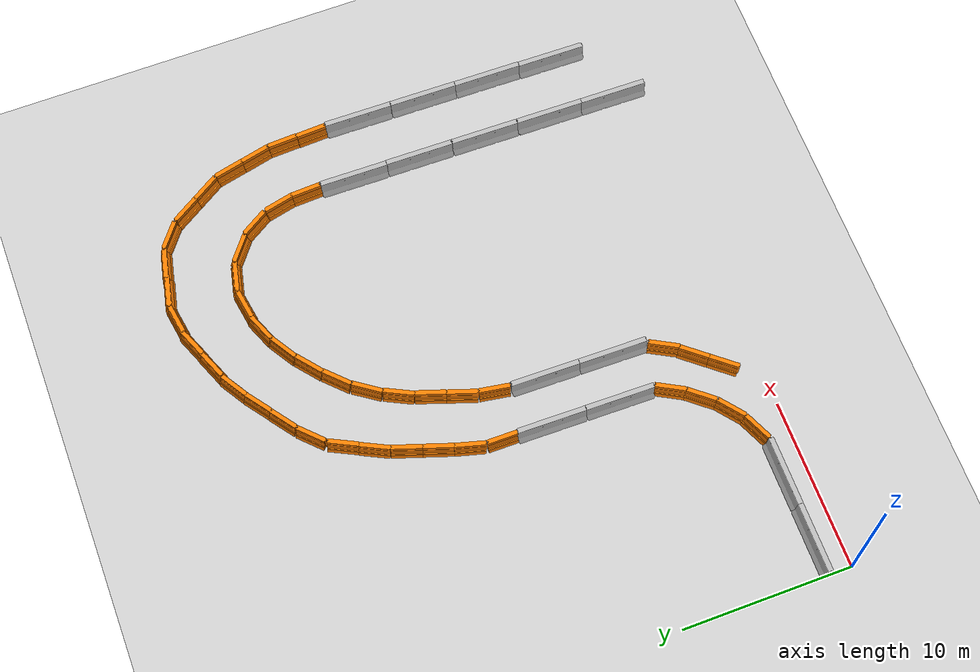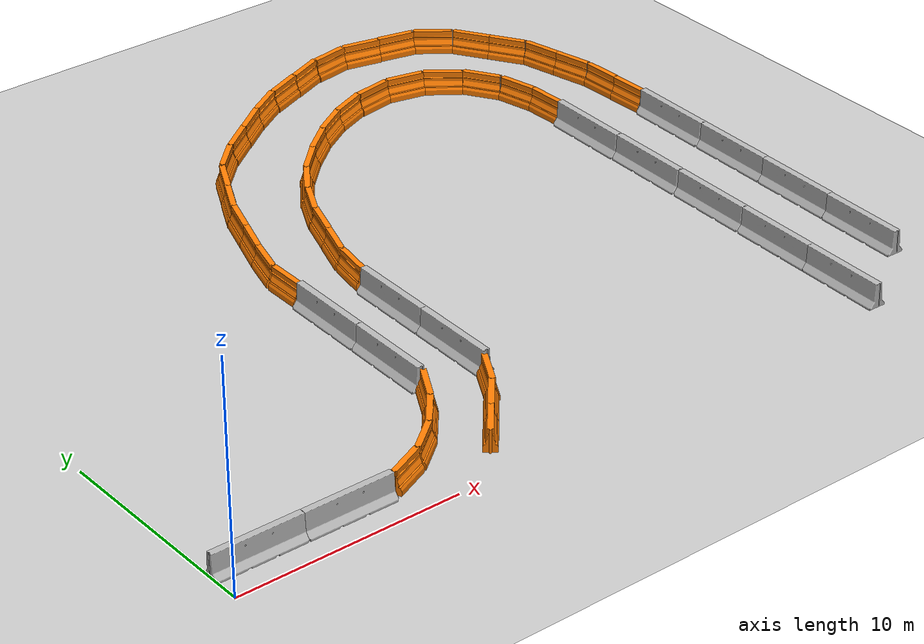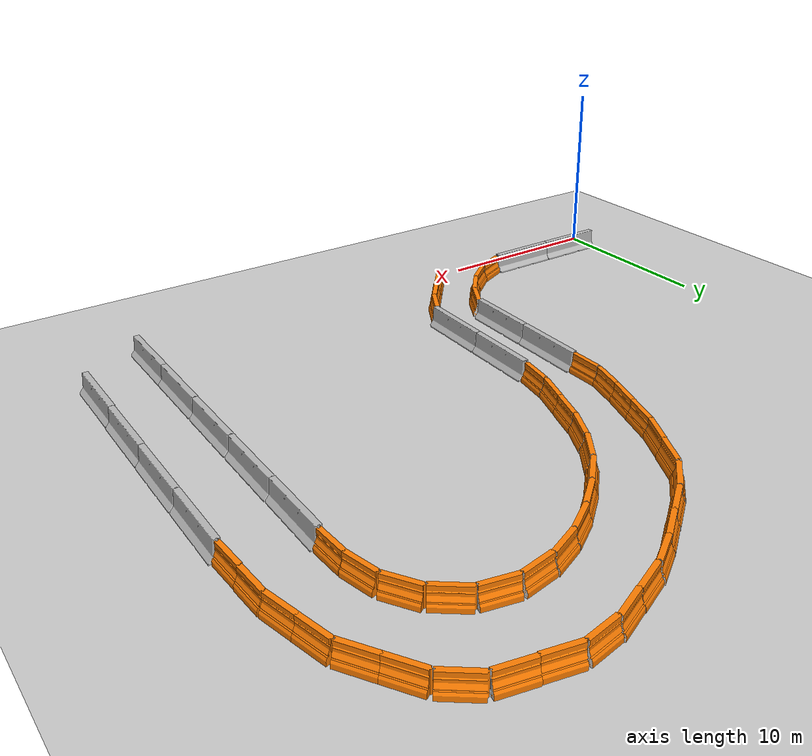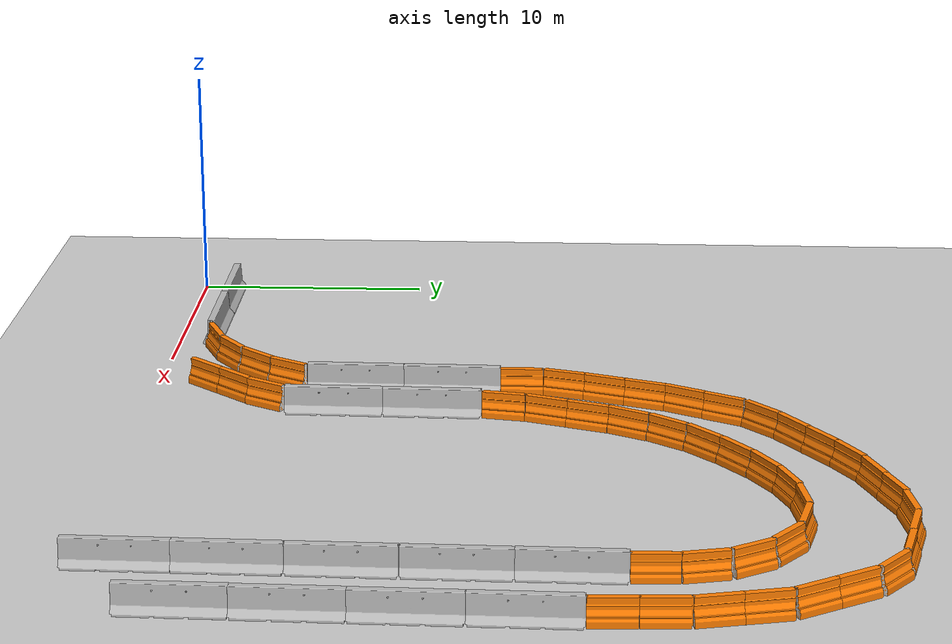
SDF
<sdf version="1.6">
 <world name="default">
  <model name="ground_plane">
   <static>1</static>
   <link name="link">
    <collision name="collision">
     <geometry><plane><normal>0 0 1</normal><size>100 100</size></plane></geometry>
     <surface><friction><ode><mu>100</mu><mu2>50</mu2></ode></friction></surface>
    </collision>
    <visual name="visual">
     <cast_shadows>0</cast_shadows>
     <geometry><plane><normal>0 0 1</normal><size>100 100</size></plane></geometry>
     <material>
      <script><uri>file://media/materials/scripts/gazebo.material</uri><name>Gazebo/Grey</name></script>
     </material>
    </visual>
   </link>
  </model>
  <model name="jersey_barrier_0">
   <static>1</static>
   <link name="link">
    <visual name="visual">
     <geometry>
      <mesh><uri>model://jersey_barrier/meshes/jersey_barrier.dae</uri><scale>1 1 1</scale></mesh>
     </geometry>
    </visual>
    <collision name="upright">
     <pose>0 0 0.5715 0 -0 0</pose>
     <geometry><box><size>4.06542 0.3063 1.143</size></box></geometry>
    </collision>
    <collision name="base">
     <pose>0 0 0.032258 0 -0 0</pose>
     <geometry><box><size>4.06542 0.8107 0.064516</size></box></geometry>
    </collision>
    <collision name="base2">
     <pose>0 0 0.1 0 -0 0</pose>
     <geometry><box><size>4.06542 0.65 0.1</size></box></geometry>
    </collision>
    <collision name="base3">
     <pose>0 0 0.2 0 -0 0</pose>
     <geometry><box><size>4.06542 0.5 0.1</size></box></geometry>
    </collision>
    <collision name="left-angle">
     <pose>0 -0.224 0.2401 0.9 -0 0</pose>
     <geometry><box><size>4.06542 0.5 0.064516</size></box></geometry>
    </collision>
    <collision name="right-angle">
     <pose>0 0.224 0.2401 -0.9 0 0</pose>
     <geometry><box><size>4.06542 0.5 0.064516</size></box></geometry>
    </collision>
   </link>
   <pose>1.97965 1.45207 0 0 -0 0</pose>
  </model>
  <model name="jersey_barrier_0_clone_0">
   <static>1</static>
   <link name="link">
    <visual name="visual">
     <geometry>
      <mesh><uri>model://jersey_barrier/meshes/jersey_barrier.dae</uri><scale>1 1 1</scale></mesh>
     </geometry>
    </visual>
    <collision name="upright">
     <pose>0 0 0.5715 0 -0 0</pose>
     <geometry><box><size>4.06542 0.3063 1.143</size></box></geometry>
    </collision>
    <collision name="base">
     <pose>0 0 0.032258 0 -0 0</pose>
     <geometry><box><size>4.06542 0.8107 0.064516</size></box></geometry>
    </collision>
    <collision name="base2">
     <pose>0 0 0.1 0 -0 0</pose>
     <geometry><box><size>4.06542 0.65 0.1</size></box></geometry>
    </collision>
    <collision name="base3">
     <pose>0 0 0.2 0 -0 0</pose>
     <geometry><box><size>4.06542 0.5 0.1</size></box></geometry>
    </collision>
    <collision name="left-angle">
     <pose>0 -0.224 0.2401 0.9 -0 0</pose>
     <geometry><box><size>4.06542 0.5 0.064516</size></box></geometry>
    </collision>
    <collision name="right-angle">
     <pose>0 0.224 0.2401 -0.9 0 0</pose>
     <geometry><box><size>4.06542 0.5 0.064516</size></box></geometry>
    </collision>
   </link>
   <pose>5.99858 1.44509 0 0 -0 0</pose>
  </model>
  <model name="drc_practice_organge_jersey_barrier">
   <static>1</static>
   <link name="link">
    <visual name="visual">
     <geometry>
      <mesh>
       <uri>model://drc_practice_orange_jersey_barrier/meshes/jersey_barrier.dae</uri>
       <scale>1 1 1</scale>
      </mesh>
     </geometry>
    </visual>
    <collision name="collision">
     <geometry>
      <mesh>
       <uri>model://drc_practice_orange_jersey_barrier/meshes/jersey_barrier.dae</uri>
       <scale>1 1 1</scale>
      </mesh>
     </geometry>
    </collision>
   </link>
   <pose>8.94023 1.83416 0 0 0 -1.14589</pose>
  </model>
  <model name="drc_practice_organge_jersey_barrier_clone_0">
   <static>1</static>
   <link name="link">
    <visual name="visual">
     <geometry>
      <mesh>
       <uri>model://drc_practice_orange_jersey_barrier/meshes/jersey_barrier.dae</uri>
       <scale>1 1 1</scale>
      </mesh>
     </geometry>
    </visual>
    <collision name="collision">
     <geometry>
      <mesh>
       <uri>model://drc_practice_orange_jersey_barrier/meshes/jersey_barrier.dae</uri>
       <scale>1 1 1</scale>
      </mesh>
     </geometry>
    </collision>
   </link>
   <pose>10.483 2.74563 0 0 0 -0.895836</pose>
  </model>
  <model name="drc_practice_organge_jersey_barrier_clone_0_clone_0">
   <static>1</static>
   <link name="link">
    <visual name="visual">
     <geometry>
      <mesh>
       <uri>model://drc_practice_orange_jersey_barrier/meshes/jersey_barrier.dae</uri>
       <scale>1 1 1</scale>
      </mesh>
     </geometry>
    </visual>
    <collision name="collision">
     <geometry>
      <mesh>
       <uri>model://drc_practice_orange_jersey_barrier/meshes/jersey_barrier.dae</uri>
       <scale>1 1 1</scale>
      </mesh>
     </geometry>
    </collision>
   </link>
   <pose>11.7617 4.00726 0 0 0 -0.68735</pose>
  </model>
  <model name="drc_practice_organge_jersey_barrier_clone_0_clone_0_clone">
   <static>1</static>
   <link name="link">
    <visual name="visual">
     <geometry>
      <mesh>
       <uri>model://drc_practice_orange_jersey_barrier/meshes/jersey_barrier.dae</uri>
       <scale>1 1 1</scale>
      </mesh>
     </geometry>
    </visual>
    <collision name="collision">
     <geometry>
      <mesh>
       <uri>model://drc_practice_orange_jersey_barrier/meshes/jersey_barrier.dae</uri>
       <scale>1 1 1</scale>
      </mesh>
     </geometry>
    </collision>
   </link>
   <pose>13.1462 2.06033 0 0 0 -0.68735</pose>
  </model>
  <model name="drc_practice_organge_jersey_barrier_clone_0_clone_0_clone_0">
   <static>1</static>
   <link name="link">
    <visual name="visual">
     <geometry>
      <mesh>
       <uri>model://drc_practice_orange_jersey_barrier/meshes/jersey_barrier.dae</uri>
       <scale>1 1 1</scale>
      </mesh>
     </geometry>
    </visual>
    <collision name="collision">
     <geometry>
      <mesh>
       <uri>model://drc_practice_orange_jersey_barrier/meshes/jersey_barrier.dae</uri>
       <scale>1 1 1</scale>
      </mesh>
     </geometry>
    </collision>
   </link>
   <pose>12.769 5.46834 0 0 0 -0.499455</pose>
  </model>
  <model name="drc_practice_organge_jersey_barrier_clone_0_clone_0_clone_clone">
   <static>1</static>
   <link name="link">
    <visual name="visual">
     <geometry>
      <mesh>
       <uri>model://drc_practice_orange_jersey_barrier/meshes/jersey_barrier.dae</uri>
       <scale>1 1 1</scale>
      </mesh>
     </geometry>
    </visual>
    <collision name="collision">
     <geometry>
      <mesh>
       <uri>model://drc_practice_orange_jersey_barrier/meshes/jersey_barrier.dae</uri>
       <scale>1 1 1</scale>
      </mesh>
     </geometry>
    </collision>
   </link>
   <pose>14.2642 3.41015 0 0 0 -0.68735</pose>
  </model>
  <model name="drc_practice_organge_jersey_barrier_clone_0_clone_0_clone_0_clone">
   <static>1</static>
   <link name="link">
    <visual name="visual">
     <geometry>
      <mesh>
       <uri>model://drc_practice_orange_jersey_barrier/meshes/jersey_barrier.dae</uri>
       <scale>1 1 1</scale>
      </mesh>
     </geometry>
    </visual>
    <collision name="collision">
     <geometry>
      <mesh>
       <uri>model://drc_practice_orange_jersey_barrier/meshes/jersey_barrier.dae</uri>
       <scale>1 1 1</scale>
      </mesh>
     </geometry>
    </collision>
   </link>
   <pose>15.2804 4.83523 0 0 0 -0.499455</pose>
  </model>
  <model name="jersey_barrier_1">
   <static>1</static>
   <link name="link">
    <visual name="visual">
     <geometry>
      <mesh><uri>model://jersey_barrier/meshes/jersey_barrier.dae</uri><scale>1 1 1</scale></mesh>
     </geometry>
    </visual>
    <collision name="upright">
     <pose>0 0 0.5715 0 -0 0</pose>
     <geometry><box><size>4.06542 0.3063 1.143</size></box></geometry>
    </collision>
    <collision name="base">
     <pose>0 0 0.032258 0 -0 0</pose>
     <geometry><box><size>4.06542 0.8107 0.064516</size></box></geometry>
    </collision>
    <collision name="base2">
     <pose>0 0 0.1 0 -0 0</pose>
     <geometry><box><size>4.06542 0.65 0.1</size></box></geometry>
    </collision>
    <collision name="base3">
     <pose>0 0 0.2 0 -0 0</pose>
     <geometry><box><size>4.06542 0.5 0.1</size></box></geometry>
    </collision>
    <collision name="left-angle">
     <pose>0 -0.224 0.2401 0.9 -0 0</pose>
     <geometry><box><size>4.06542 0.5 0.064516</size></box></geometry>
    </collision>
    <collision name="right-angle">
     <pose>0 0.224 0.2401 -0.9 0 0</pose>
     <geometry><box><size>4.06542 0.5 0.064516</size></box></geometry>
    </collision>
   </link>
   <pose>13.1944 8.34441 0 0 0 -1.5863</pose>
  </model>
  <model name="jersey_barrier_1_clone">
   <static>1</static>
   <link name="link">
    <visual name="visual">
     <geometry>
      <mesh><uri>model://jersey_barrier/meshes/jersey_barrier.dae</uri><scale>1 1 1</scale></mesh>
     </geometry>
    </visual>
    <collision name="upright">
     <pose>0 0 0.5715 0 -0 0</pose>
     <geometry><box><size>4.06542 0.3063 1.143</size></box></geometry>
    </collision>
    <collision name="base">
     <pose>0 0 0.032258 0 -0 0</pose>
     <geometry><box><size>4.06542 0.8107 0.064516</size></box></geometry>
    </collision>
    <collision name="base2">
     <pose>0 0 0.1 0 -0 0</pose>
     <geometry><box><size>4.06542 0.65 0.1</size></box></geometry>
    </collision>
    <collision name="base3">
     <pose>0 0 0.2 0 -0 0</pose>
     <geometry><box><size>4.06542 0.5 0.1</size></box></geometry>
    </collision>
    <collision name="left-angle">
     <pose>0 -0.224 0.2401 0.9 -0 0</pose>
     <geometry><box><size>4.06542 0.5 0.064516</size></box></geometry>
    </collision>
    <collision name="right-angle">
     <pose>0 0.224 0.2401 -0.9 0 0</pose>
     <geometry><box><size>4.06542 0.5 0.064516</size></box></geometry>
    </collision>
   </link>
   <pose>15.9038 7.70233 0 0 0 -1.5863</pose>
  </model>
  <model name="jersey_barrier_1_clone_0">
   <static>1</static>
   <link name="link">
    <visual name="visual">
     <geometry>
      <mesh><uri>model://jersey_barrier/meshes/jersey_barrier.dae</uri><scale>1 1 1</scale></mesh>
     </geometry>
    </visual>
    <collision name="upright">
     <pose>0 0 0.5715 0 -0 0</pose>
     <geometry><box><size>4.06542 0.3063 1.143</size></box></geometry>
    </collision>
    <collision name="base">
     <pose>0 0 0.032258 0 -0 0</pose>
     <geometry><box><size>4.06542 0.8107 0.064516</size></box></geometry>
    </collision>
    <collision name="base2">
     <pose>0 0 0.1 0 -0 0</pose>
     <geometry><box><size>4.06542 0.65 0.1</size></box></geometry>
    </collision>
    <collision name="base3">
     <pose>0 0 0.2 0 -0 0</pose>
     <geometry><box><size>4.06542 0.5 0.1</size></box></geometry>
    </collision>
    <collision name="left-angle">
     <pose>0 -0.224 0.2401 0.9 -0 0</pose>
     <geometry><box><size>4.06542 0.5 0.064516</size></box></geometry>
    </collision>
    <collision name="right-angle">
     <pose>0 0.224 0.2401 -0.9 0 0</pose>
     <geometry><box><size>4.06542 0.5 0.064516</size></box></geometry>
    </collision>
   </link>
   <pose>15.964 11.7226 0 0 0 -1.5863</pose>
  </model>
  <model name="jersey_barrier_1_clone_1">
   <static>1</static>
   <link name="link">
    <visual name="visual">
     <geometry>
      <mesh><uri>model://jersey_barrier/meshes/jersey_barrier.dae</uri><scale>1 1 1</scale></mesh>
     </geometry>
    </visual>
    <collision name="upright">
     <pose>0 0 0.5715 0 -0 0</pose>
     <geometry><box><size>4.06542 0.3063 1.143</size></box></geometry>
    </collision>
    <collision name="base">
     <pose>0 0 0.032258 0 -0 0</pose>
     <geometry><box><size>4.06542 0.8107 0.064516</size></box></geometry>
    </collision>
    <collision name="base2">
     <pose>0 0 0.1 0 -0 0</pose>
     <geometry><box><size>4.06542 0.65 0.1</size></box></geometry>
    </collision>
    <collision name="base3">
     <pose>0 0 0.2 0 -0 0</pose>
     <geometry><box><size>4.06542 0.5 0.1</size></box></geometry>
    </collision>
    <collision name="left-angle">
     <pose>0 -0.224 0.2401 0.9 -0 0</pose>
     <geometry><box><size>4.06542 0.5 0.064516</size></box></geometry>
    </collision>
    <collision name="right-angle">
     <pose>0 0.224 0.2401 -0.9 0 0</pose>
     <geometry><box><size>4.06542 0.5 0.064516</size></box></geometry>
    </collision>
   </link>
   <pose>13.2555 12.3903 0 0 0 -1.5863</pose>
  </model>
  <model name="drc_practice_organge_jersey_barrier_0">
   <static>1</static>
   <link name="link">
    <visual name="visual">
     <geometry>
      <mesh>
       <uri>model://drc_practice_orange_jersey_barrier/meshes/jersey_barrier.dae</uri>
       <scale>1 1 1</scale>
      </mesh>
     </geometry>
    </visual>
    <collision name="collision">
     <geometry>
      <mesh>
       <uri>model://drc_practice_orange_jersey_barrier/meshes/jersey_barrier.dae</uri>
       <scale>1 1 1</scale>
      </mesh>
     </geometry>
    </collision>
   </link>
   <pose>16.1418 14.7037 0 0 0 -0.159241</pose>
  </model>
  <model name="drc_practice_organge_jersey_barrier_1">
   <static>1</static>
   <link name="link">
    <visual name="visual">
     <geometry>
      <mesh>
       <uri>model://drc_practice_orange_jersey_barrier/meshes/jersey_barrier.dae</uri>
       <scale>1 1 1</scale>
      </mesh>
     </geometry>
    </visual>
    <collision name="collision">
     <geometry>
      <mesh>
       <uri>model://drc_practice_orange_jersey_barrier/meshes/jersey_barrier.dae</uri>
       <scale>1 1 1</scale>
      </mesh>
     </geometry>
    </collision>
   </link>
   <pose>13.2812 15.315 0 0 -0 0</pose>
  </model>
  <model name="drc_practice_organge_jersey_barrier_0_clone_0">
   <static>1</static>
   <link name="link">
    <visual name="visual">
     <geometry>
      <mesh>
       <uri>model://drc_practice_orange_jersey_barrier/meshes/jersey_barrier.dae</uri>
       <scale>1 1 1</scale>
      </mesh>
     </geometry>
    </visual>
    <collision name="collision">
     <geometry>
      <mesh>
       <uri>model://drc_practice_orange_jersey_barrier/meshes/jersey_barrier.dae</uri>
       <scale>1 1 1</scale>
      </mesh>
     </geometry>
    </collision>
   </link>
   <pose>16.5703 16.4699 0 0 0 -0.320373</pose>
  </model>
  <model name="drc_practice_organge_jersey_barrier_0_clone_0_clone">
   <static>1</static>
   <link name="link">
    <visual name="visual">
     <geometry>
      <mesh>
       <uri>model://drc_practice_orange_jersey_barrier/meshes/jersey_barrier.dae</uri>
       <scale>1 1 1</scale>
      </mesh>
     </geometry>
    </visual>
    <collision name="collision">
     <geometry>
      <mesh>
       <uri>model://drc_practice_orange_jersey_barrier/meshes/jersey_barrier.dae</uri>
       <scale>1 1 1</scale>
      </mesh>
     </geometry>
    </collision>
   </link>
   <pose>17.1479 18.1401 0 0 0 -0.320373</pose>
  </model>
  <model name="drc_practice_organge_jersey_barrier_0_clone_0_clone_0">
   <static>1</static>
   <link name="link">
    <visual name="visual">
     <geometry>
      <mesh>
       <uri>model://drc_practice_orange_jersey_barrier/meshes/jersey_barrier.dae</uri>
       <scale>1 1 1</scale>
      </mesh>
     </geometry>
    </visual>
    <collision name="collision">
     <geometry>
      <mesh>
       <uri>model://drc_practice_orange_jersey_barrier/meshes/jersey_barrier.dae</uri>
       <scale>1 1 1</scale>
      </mesh>
     </geometry>
    </collision>
   </link>
   <pose>13.5277 17.1222 0 0 0 -0.265206</pose>
  </model>
  <model name="drc_practice_organge_jersey_barrier_0_clone_0_clone_clone">
   <static>1</static>
   <link name="link">
    <visual name="visual">
     <geometry>
      <mesh>
       <uri>model://drc_practice_orange_jersey_barrier/meshes/jersey_barrier.dae</uri>
       <scale>1 1 1</scale>
      </mesh>
     </geometry>
    </visual>
    <collision name="collision">
     <geometry>
      <mesh>
       <uri>model://drc_practice_orange_jersey_barrier/meshes/jersey_barrier.dae</uri>
       <scale>1 1 1</scale>
      </mesh>
     </geometry>
    </collision>
   </link>
   <pose>14.0484 18.803 0 0 0 -0.320373</pose>
  </model>
  <model name="drc_practice_organge_jersey_barrier_0_clone_0_clone_clone_0">
   <static>1</static>
   <link name="link">
    <visual name="visual">
     <geometry>
      <mesh>
       <uri>model://drc_practice_orange_jersey_barrier/meshes/jersey_barrier.dae</uri>
       <scale>1 1 1</scale>
      </mesh>
     </geometry>
    </visual>
    <collision name="collision">
     <geometry>
      <mesh>
       <uri>model://drc_practice_orange_jersey_barrier/meshes/jersey_barrier.dae</uri>
       <scale>1 1 1</scale>
      </mesh>
     </geometry>
    </collision>
   </link>
   <pose>17.8079 19.7821 0 0 0 -0.458796</pose>
  </model>
  <model name="drc_practice_organge_jersey_barrier_0_clone_0_clone_clone_clone">
   <static>1</static>
   <link name="link">
    <visual name="visual">
     <geometry>
      <mesh>
       <uri>model://drc_practice_orange_jersey_barrier/meshes/jersey_barrier.dae</uri>
       <scale>1 1 1</scale>
      </mesh>
     </geometry>
    </visual>
    <collision name="collision">
     <geometry>
      <mesh>
       <uri>model://drc_practice_orange_jersey_barrier/meshes/jersey_barrier.dae</uri>
       <scale>1 1 1</scale>
      </mesh>
     </geometry>
    </collision>
   </link>
   <pose>14.6026 20.4536 0 0 0 -0.320373</pose>
  </model>
  <model name="drc_practice_organge_jersey_barrier_0_clone_0_clone_clone_0_clone">
   <static>1</static>
   <link name="link">
    <visual name="visual">
     <geometry>
      <mesh>
       <uri>model://drc_practice_orange_jersey_barrier/meshes/jersey_barrier.dae</uri>
       <scale>1 1 1</scale>
      </mesh>
     </geometry>
    </visual>
    <collision name="collision">
     <geometry>
      <mesh>
       <uri>model://drc_practice_orange_jersey_barrier/meshes/jersey_barrier.dae</uri>
       <scale>1 1 1</scale>
      </mesh>
     </geometry>
    </collision>
   </link>
   <pose>15.2701 22.0895 0 0 0 -0.458796</pose>
  </model>
  <model name="drc_practice_organge_jersey_barrier_0_clone_0_clone_clone_0_clone_0">
   <static>1</static>
   <link name="link">
    <visual name="visual">
     <geometry>
      <mesh>
       <uri>model://drc_practice_orange_jersey_barrier/meshes/jersey_barrier.dae</uri>
       <scale>1 1 1</scale>
      </mesh>
     </geometry>
    </visual>
    <collision name="collision">
     <geometry>
      <mesh>
       <uri>model://drc_practice_orange_jersey_barrier/meshes/jersey_barrier.dae</uri>
       <scale>1 1 1</scale>
      </mesh>
     </geometry>
    </collision>
   </link>
   <pose>18.7065 21.3447 0 0 0 -0.610482</pose>
  </model>
  <model name="drc_practice_organge_jersey_barrier_0_clone_0_clone_clone_0_clone_clone">
   <static>1</static>
   <link name="link">
    <visual name="visual">
     <geometry>
      <mesh>
       <uri>model://drc_practice_orange_jersey_barrier/meshes/jersey_barrier.dae</uri>
       <scale>1 1 1</scale>
      </mesh>
     </geometry>
    </visual>
    <collision name="collision">
     <geometry>
      <mesh>
       <uri>model://drc_practice_orange_jersey_barrier/meshes/jersey_barrier.dae</uri>
       <scale>1 1 1</scale>
      </mesh>
     </geometry>
    </collision>
   </link>
   <pose>16.0773 23.6599 0 0 0 -0.458796</pose>
  </model>
  <model name="drc_practice_organge_jersey_barrier_0_clone_0_clone_clone_0_clone_0_clone">
   <static>1</static>
   <link name="link">
    <visual name="visual">
     <geometry>
      <mesh>
       <uri>model://drc_practice_orange_jersey_barrier/meshes/jersey_barrier.dae</uri>
       <scale>1 1 1</scale>
      </mesh>
     </geometry>
    </visual>
    <collision name="collision">
     <geometry>
      <mesh>
       <uri>model://drc_practice_orange_jersey_barrier/meshes/jersey_barrier.dae</uri>
       <scale>1 1 1</scale>
      </mesh>
     </geometry>
    </collision>
   </link>
   <pose>19.8539 22.7324 0 0 0 -0.790237</pose>
  </model>
  <model name="drc_practice_organge_jersey_barrier_0_clone_0_clone_clone_0_clone_0_clone_clone">
   <static>1</static>
   <link name="link">
    <visual name="visual">
     <geometry>
      <mesh>
       <uri>model://drc_practice_orange_jersey_barrier/meshes/jersey_barrier.dae</uri>
       <scale>1 1 1</scale>
      </mesh>
     </geometry>
    </visual>
    <collision name="collision">
     <geometry>
      <mesh>
       <uri>model://drc_practice_orange_jersey_barrier/meshes/jersey_barrier.dae</uri>
       <scale>1 1 1</scale>
      </mesh>
     </geometry>
    </collision>
   </link>
   <pose>17.1714 25.144 0 0 0 -0.790237</pose>
  </model>
  <model name="drc_practice_organge_jersey_barrier_0_clone_0_clone_clone_0_clone_0_clone_clone_clone">
   <static>1</static>
   <link name="link">
    <visual name="visual">
     <geometry>
      <mesh>
       <uri>model://drc_practice_orange_jersey_barrier/meshes/jersey_barrier.dae</uri>
       <scale>1 1 1</scale>
      </mesh>
     </geometry>
    </visual>
    <collision name="collision">
     <geometry>
      <mesh>
       <uri>model://drc_practice_orange_jersey_barrier/meshes/jersey_barrier.dae</uri>
       <scale>1 1 1</scale>
      </mesh>
     </geometry>
    </collision>
   </link>
   <pose>18.5639 26.3044 0 0 0 -0.933401</pose>
  </model>
  <model name="drc_practice_organge_jersey_barrier_0_clone_0_clone_clone_0_clone_0_clone_clone_0">
   <static>1</static>
   <link name="link">
    <visual name="visual">
     <geometry>
      <mesh>
       <uri>model://drc_practice_orange_jersey_barrier/meshes/jersey_barrier.dae</uri>
       <scale>1 1 1</scale>
      </mesh>
     </geometry>
    </visual>
    <collision name="collision">
     <geometry>
      <mesh>
       <uri>model://drc_practice_orange_jersey_barrier/meshes/jersey_barrier.dae</uri>
       <scale>1 1 1</scale>
      </mesh>
     </geometry>
    </collision>
   </link>
   <pose>21.1732 23.9264 0 0 0 -0.888354</pose>
  </model>
  <model name="drc_practice_organge_jersey_barrier_0_clone_0_clone_clone_0_clone_0_clone_clone_clone_clone">
   <static>1</static>
   <link name="link">
    <visual name="visual">
     <geometry>
      <mesh>
       <uri>model://drc_practice_orange_jersey_barrier/meshes/jersey_barrier.dae</uri>
       <scale>1 1 1</scale>
      </mesh>
     </geometry>
    </visual>
    <collision name="collision">
     <geometry>
      <mesh>
       <uri>model://drc_practice_orange_jersey_barrier/meshes/jersey_barrier.dae</uri>
       <scale>1 1 1</scale>
      </mesh>
     </geometry>
    </collision>
   </link>
   <pose>19.9619 27.3083 0 0 0 -0.933401</pose>
  </model>
  <model name="drc_practice_organge_jersey_barrier_0_clone_0_clone_clone_0_clone_0_clone_clone_0_clone">
   <static>1</static>
   <link name="link">
    <visual name="visual">
     <geometry>
      <mesh>
       <uri>model://drc_practice_orange_jersey_barrier/meshes/jersey_barrier.dae</uri>
       <scale>1 1 1</scale>
      </mesh>
     </geometry>
    </visual>
    <collision name="collision">
     <geometry>
      <mesh>
       <uri>model://drc_practice_orange_jersey_barrier/meshes/jersey_barrier.dae</uri>
       <scale>1 1 1</scale>
      </mesh>
     </geometry>
    </collision>
   </link>
   <pose>22.6179 24.9707 0 0 0 -1.01538</pose>
  </model>
  <model name="drc_practice_organge_jersey_barrier_0_clone_0_clone_clone_0_clone_0_clone_clone_0_clone_clone">
   <static>1</static>
   <link name="link">
    <visual name="visual">
     <geometry>
      <mesh>
       <uri>model://drc_practice_orange_jersey_barrier/meshes/jersey_barrier.dae</uri>
       <scale>1 1 1</scale>
      </mesh>
     </geometry>
    </visual>
    <collision name="collision">
     <geometry>
      <mesh>
       <uri>model://drc_practice_orange_jersey_barrier/meshes/jersey_barrier.dae</uri>
       <scale>1 1 1</scale>
      </mesh>
     </geometry>
    </collision>
   </link>
   <pose>21.4219 28.2774 0 0 0 -1.01538</pose>
  </model>
  <model name="drc_practice_organge_jersey_barrier_0_clone_0_clone_clone_0_clone_0_clone_clone_0_clone_clone_0">
   <static>1</static>
   <link name="link">
    <visual name="visual">
     <geometry>
      <mesh>
       <uri>model://drc_practice_orange_jersey_barrier/meshes/jersey_barrier.dae</uri>
       <scale>1 1 1</scale>
      </mesh>
     </geometry>
    </visual>
    <collision name="collision">
     <geometry>
      <mesh>
       <uri>model://drc_practice_orange_jersey_barrier/meshes/jersey_barrier.dae</uri>
       <scale>1 1 1</scale>
      </mesh>
     </geometry>
    </collision>
   </link>
   <pose>24.2054 25.7784 0 0 0 -1.18059</pose>
  </model>
  <model name="drc_practice_organge_jersey_barrier_0_clone_0_clone_clone_0_clone_0_clone_clone_0_clone_clone_0_clone">
   <static>1</static>
   <link name="link">
    <visual name="visual">
     <geometry>
      <mesh>
       <uri>model://drc_practice_orange_jersey_barrier/meshes/jersey_barrier.dae</uri>
       <scale>1 1 1</scale>
      </mesh>
     </geometry>
    </visual>
    <collision name="collision">
     <geometry>
      <mesh>
       <uri>model://drc_practice_orange_jersey_barrier/meshes/jersey_barrier.dae</uri>
       <scale>1 1 1</scale>
      </mesh>
     </geometry>
    </collision>
   </link>
   <pose>23.0379 29.0549 0 0 0 -1.18059</pose>
  </model>
  <model name="drc_practice_organge_jersey_barrier_0_clone_0_clone_clone_0_clone_0_clone_clone_0_clone_clone_0_clone_0">
   <static>1</static>
   <link name="link">
    <visual name="visual">
     <geometry>
      <mesh>
       <uri>model://drc_practice_orange_jersey_barrier/meshes/jersey_barrier.dae</uri>
       <scale>1 1 1</scale>
      </mesh>
     </geometry>
    </visual>
    <collision name="collision">
     <geometry>
      <mesh>
       <uri>model://drc_practice_orange_jersey_barrier/meshes/jersey_barrier.dae</uri>
       <scale>1 1 1</scale>
      </mesh>
     </geometry>
    </collision>
   </link>
   <pose>24.6692 29.6916 0 0 0 -1.18059</pose>
  </model>
  <model name="drc_practice_organge_jersey_barrier_0_clone_0_clone_clone_0_clone_0_clone_clone_0_clone_clone_0_clone_1">
   <static>1</static>
   <link name="link">
    <visual name="visual">
     <geometry>
      <mesh>
       <uri>model://drc_practice_orange_jersey_barrier/meshes/jersey_barrier.dae</uri>
       <scale>1 1 1</scale>
      </mesh>
     </geometry>
    </visual>
    <collision name="collision">
     <geometry>
      <mesh>
       <uri>model://drc_practice_orange_jersey_barrier/meshes/jersey_barrier.dae</uri>
       <scale>1 1 1</scale>
      </mesh>
     </geometry>
    </collision>
   </link>
   <pose>25.8939 26.2054 0 0 0 -1.4084</pose>
  </model>
  <model name="drc_practice_organge_jersey_barrier_0_clone_0_clone_clone_0_clone_0_clone_clone_0_clone_clone_0_clone_1_clone">
   <static>1</static>
   <link name="link">
    <visual name="visual">
     <geometry>
      <mesh>
       <uri>model://drc_practice_orange_jersey_barrier/meshes/jersey_barrier.dae</uri>
       <scale>1 1 1</scale>
      </mesh>
     </geometry>
    </visual>
    <collision name="collision">
     <geometry>
      <mesh>
       <uri>model://drc_practice_orange_jersey_barrier/meshes/jersey_barrier.dae</uri>
       <scale>1 1 1</scale>
      </mesh>
     </geometry>
    </collision>
   </link>
   <pose>26.3514 30.1012 0 0 0 -1.4084</pose>
  </model>
  <model name="drc_practice_organge_jersey_barrier_0_clone_0_clone_clone_0_clone_0_clone_clone_0_clone_clone_0_clone_1_clone_0">
   <static>1</static>
   <link name="link">
    <visual name="visual">
     <geometry>
      <mesh>
       <uri>model://drc_practice_orange_jersey_barrier/meshes/jersey_barrier.dae</uri>
       <scale>1 1 1</scale>
      </mesh>
     </geometry>
    </visual>
    <collision name="collision">
     <geometry>
      <mesh>
       <uri>model://drc_practice_orange_jersey_barrier/meshes/jersey_barrier.dae</uri>
       <scale>1 1 1</scale>
      </mesh>
     </geometry>
    </collision>
   </link>
   <pose>27.675 26.1449 0 0 0 -1.79124</pose>
  </model>
  <model name="drc_practice_organge_jersey_barrier_0_clone_0_clone_clone_0_clone_0_clone_clone_0_clone_clone_0_clone_1_clone_0_clone">
   <static>1</static>
   <link name="link">
    <visual name="visual">
     <geometry>
      <mesh>
       <uri>model://drc_practice_orange_jersey_barrier/meshes/jersey_barrier.dae</uri>
       <scale>1 1 1</scale>
      </mesh>
     </geometry>
    </visual>
    <collision name="collision">
     <geometry>
      <mesh>
       <uri>model://drc_practice_orange_jersey_barrier/meshes/jersey_barrier.dae</uri>
       <scale>1 1 1</scale>
      </mesh>
     </geometry>
    </collision>
   </link>
   <pose>28.1326 30.0439 0 0 0 -1.79124</pose>
  </model>
  <model name="drc_practice_organge_jersey_barrier_0_clone_0_clone_clone_0_clone_0_clone_clone_0_clone_clone_0_clone_1_clone_0_clone_0">
   <static>1</static>
   <link name="link">
    <visual name="visual">
     <geometry>
      <mesh>
       <uri>model://drc_practice_orange_jersey_barrier/meshes/jersey_barrier.dae</uri>
       <scale>1 1 1</scale>
      </mesh>
     </geometry>
    </visual>
    <collision name="collision">
     <geometry>
      <mesh>
       <uri>model://drc_practice_orange_jersey_barrier/meshes/jersey_barrier.dae</uri>
       <scale>1 1 1</scale>
      </mesh>
     </geometry>
    </collision>
   </link>
   <pose>29.3003 25.4079 0 0 0 -2.22537</pose>
  </model>
  <model name="drc_practice_organge_jersey_barrier_0_clone_0_clone_clone_0_clone_0_clone_clone_0_clone_clone_0_clone_1_clone_0_clone_clone">
   <static>1</static>
   <link name="link">
    <visual name="visual">
     <geometry>
      <mesh>
       <uri>model://drc_practice_orange_jersey_barrier/meshes/jersey_barrier.dae</uri>
       <scale>1 1 1</scale>
      </mesh>
     </geometry>
    </visual>
    <collision name="collision">
     <geometry>
      <mesh>
       <uri>model://drc_practice_orange_jersey_barrier/meshes/jersey_barrier.dae</uri>
       <scale>1 1 1</scale>
      </mesh>
     </geometry>
    </collision>
   </link>
   <pose>29.8571 29.6882 0 0 0 -1.79124</pose>
  </model>
  <model name="drc_practice_organge_jersey_barrier_0_clone_0_clone_clone_0_clone_0_clone_clone_0_clone_clone_0_clone_1_clone_0_clone_0_clone">
   <static>1</static>
   <link name="link">
    <visual name="visual">
     <geometry>
      <mesh>
       <uri>model://drc_practice_orange_jersey_barrier/meshes/jersey_barrier.dae</uri>
       <scale>1 1 1</scale>
      </mesh>
     </geometry>
    </visual>
    <collision name="collision">
     <geometry>
      <mesh>
       <uri>model://drc_practice_orange_jersey_barrier/meshes/jersey_barrier.dae</uri>
       <scale>1 1 1</scale>
      </mesh>
     </geometry>
    </collision>
   </link>
   <pose>31.5089 28.9517 0 0 0 -2.22537</pose>
  </model>
  <model name="drc_practice_organge_jersey_barrier_0_clone_0_clone_clone_0_clone_0_clone_clone_0_clone_clone_0_clone_1_clone_0_clone_0_clone_0">
   <static>1</static>
   <link name="link">
    <visual name="visual">
     <geometry>
      <mesh>
       <uri>model://drc_practice_orange_jersey_barrier/meshes/jersey_barrier.dae</uri>
       <scale>1 1 1</scale>
      </mesh>
     </geometry>
    </visual>
    <collision name="collision">
     <geometry>
      <mesh>
       <uri>model://drc_practice_orange_jersey_barrier/meshes/jersey_barrier.dae</uri>
       <scale>1 1 1</scale>
      </mesh>
     </geometry>
    </collision>
   </link>
   <pose>30.5447 24.1025 0 0 0 -2.57791</pose>
  </model>
  <model name="drc_practice_organge_jersey_barrier_0_clone_0_clone_clone_0_clone_0_clone_clone_0_clone_clone_0_clone_1_clone_0_clone_0_clone_0_clone">
   <static>1</static>
   <link name="link">
    <visual name="visual">
     <geometry>
      <mesh>
       <uri>model://drc_practice_orange_jersey_barrier/meshes/jersey_barrier.dae</uri>
       <scale>1 1 1</scale>
      </mesh>
     </geometry>
    </visual>
    <collision name="collision">
     <geometry>
      <mesh>
       <uri>model://drc_practice_orange_jersey_barrier/meshes/jersey_barrier.dae</uri>
       <scale>1 1 1</scale>
      </mesh>
     </geometry>
    </collision>
   </link>
   <pose>32.7275 27.5833 0 0 0 -2.57791</pose>
  </model>
  <model name="drc_practice_organge_jersey_barrier_0_clone_0_clone_clone_0_clone_0_clone_clone_0_clone_clone_0_clone_1_clone_0_clone_0_clone_0_clone_0">
   <static>1</static>
   <link name="link">
    <visual name="visual">
     <geometry>
      <mesh>
       <uri>model://drc_practice_orange_jersey_barrier/meshes/jersey_barrier.dae</uri>
       <scale>1 1 1</scale>
      </mesh>
     </geometry>
    </visual>
    <collision name="collision">
     <geometry>
      <mesh>
       <uri>model://drc_practice_orange_jersey_barrier/meshes/jersey_barrier.dae</uri>
       <scale>1 1 1</scale>
      </mesh>
     </geometry>
    </collision>
   </link>
   <pose>33.6532 26.1056 0 0 0 -2.57791</pose>
  </model>
  <model name="drc_practice_organge_jersey_barrier_0_clone_0_clone_clone_0_clone_0_clone_clone_0_clone_clone_0_clone_1_clone_0_clone_0_clone_0_clone_1">
   <static>1</static>
   <link name="link">
    <visual name="visual">
     <geometry>
      <mesh>
       <uri>model://drc_practice_orange_jersey_barrier/meshes/jersey_barrier.dae</uri>
       <scale>1 1 1</scale>
      </mesh>
     </geometry>
    </visual>
    <collision name="collision">
     <geometry>
      <mesh>
       <uri>model://drc_practice_orange_jersey_barrier/meshes/jersey_barrier.dae</uri>
       <scale>1 1 1</scale>
      </mesh>
     </geometry>
    </collision>
   </link>
   <pose>31.2455 22.4094 0 0 0 -2.91197</pose>
  </model>
  <model name="drc_practice_organge_jersey_barrier_0_clone_0_clone_clone_0_clone_0_clone_clone_0_clone_clone_0_clone_1_clone_0_clone_0_clone_0_clone_1_clone">
   <static>1</static>
   <link name="link">
    <visual name="visual">
     <geometry>
      <mesh>
       <uri>model://drc_practice_orange_jersey_barrier/meshes/jersey_barrier.dae</uri>
       <scale>1 1 1</scale>
      </mesh>
     </geometry>
    </visual>
    <collision name="collision">
     <geometry>
      <mesh>
       <uri>model://drc_practice_orange_jersey_barrier/meshes/jersey_barrier.dae</uri>
       <scale>1 1 1</scale>
      </mesh>
     </geometry>
    </collision>
   </link>
   <pose>34.3558 24.445 0 0 0 -2.91197</pose>
  </model>
  <model name="drc_practice_organge_jersey_barrier_0_clone_0_clone_clone_0_clone_0_clone_clone_0_clone_clone_0_clone_1_clone_0_clone_0_clone_0_clone_1_clone_0">
   <static>1</static>
   <link name="link">
    <visual name="visual">
     <geometry>
      <mesh>
       <uri>model://drc_practice_orange_jersey_barrier/meshes/jersey_barrier.dae</uri>
       <scale>1 1 1</scale>
      </mesh>
     </geometry>
    </visual>
    <collision name="collision">
     <geometry>
      <mesh>
       <uri>model://drc_practice_orange_jersey_barrier/meshes/jersey_barrier.dae</uri>
       <scale>1 1 1</scale>
      </mesh>
     </geometry>
    </collision>
   </link>
   <pose>34.7441 22.7273 0 0 0 -2.91197</pose>
  </model>
  <model name="drc_practice_organge_jersey_barrier_0_clone_0_clone_clone_0_clone_0_clone_clone_0_clone_clone_0_clone_1_clone_0_clone_0_clone_0_clone_1_clone_1">
   <static>1</static>
   <link name="link">
    <visual name="visual">
     <geometry>
      <mesh>
       <uri>model://drc_practice_orange_jersey_barrier/meshes/jersey_barrier.dae</uri>
       <scale>1 1 1</scale>
      </mesh>
     </geometry>
    </visual>
    <collision name="collision">
     <geometry>
      <mesh>
       <uri>model://drc_practice_orange_jersey_barrier/meshes/jersey_barrier.dae</uri>
       <scale>1 1 1</scale>
      </mesh>
     </geometry>
    </collision>
   </link>
   <pose>31.4766 20.6579 0 0 0 -3.09173</pose>
  </model>
  <model name="drc_practice_organge_jersey_barrier_0_clone_0_clone_clone_0_clone_0_clone_clone_0_clone_clone_0_clone_1_clone_0_clone_0_clone_0_clone_1_clone_1_clone">
   <static>1</static>
   <link name="link">
    <visual name="visual">
     <geometry>
      <mesh>
       <uri>model://drc_practice_orange_jersey_barrier/meshes/jersey_barrier.dae</uri>
       <scale>1 1 1</scale>
      </mesh>
     </geometry>
    </visual>
    <collision name="collision">
     <geometry>
      <mesh>
       <uri>model://drc_practice_orange_jersey_barrier/meshes/jersey_barrier.dae</uri>
       <scale>1 1 1</scale>
      </mesh>
     </geometry>
    </collision>
   </link>
   <pose>34.9886 20.9434 0 0 0 -3.09173</pose>
  </model>
  <model name="drc_practice_organge_jersey_barrier_0_clone_0_clone_clone_0_clone_0_clone_clone_0_clone_clone_0_clone_1_clone_0_clone_0_clone_0_clone_1_clone_1_clone_0">
   <static>1</static>
   <link name="link">
    <visual name="visual">
     <geometry>
      <mesh>
       <uri>model://drc_practice_orange_jersey_barrier/meshes/jersey_barrier.dae</uri>
       <scale>1 1 1</scale>
      </mesh>
     </geometry>
    </visual>
    <collision name="collision">
     <geometry>
      <mesh>
       <uri>model://drc_practice_orange_jersey_barrier/meshes/jersey_barrier.dae</uri>
       <scale>1 1 1</scale>
      </mesh>
     </geometry>
    </collision>
   </link>
   <pose>35.0409 19.161 0 0 0 -3.09173</pose>
  </model>
  <model name="jersey_barrier_1_clone_clone">
   <static>1</static>
   <link name="link">
    <visual name="visual">
     <geometry>
      <mesh><uri>model://jersey_barrier/meshes/jersey_barrier.dae</uri><scale>1 1 1</scale></mesh>
     </geometry>
    </visual>
    <collision name="upright">
     <pose>0 0 0.5715 0 -0 0</pose>
     <geometry><box><size>4.06542 0.3063 1.143</size></box></geometry>
    </collision>
    <collision name="base">
     <pose>0 0 0.032258 0 -0 0</pose>
     <geometry><box><size>4.06542 0.8107 0.064516</size></box></geometry>
    </collision>
    <collision name="base2">
     <pose>0 0 0.1 0 -0 0</pose>
     <geometry><box><size>4.06542 0.65 0.1</size></box></geometry>
    </collision>
    <collision name="base3">
     <pose>0 0 0.2 0 -0 0</pose>
     <geometry><box><size>4.06542 0.5 0.1</size></box></geometry>
    </collision>
    <collision name="left-angle">
     <pose>0 -0.224 0.2401 0.9 -0 0</pose>
     <geometry><box><size>4.06542 0.5 0.064516</size></box></geometry>
    </collision>
    <collision name="right-angle">
     <pose>0 0.224 0.2401 -0.9 0 0</pose>
     <geometry><box><size>4.06542 0.5 0.064516</size></box></geometry>
    </collision>
   </link>
   <pose>31.456 17.738 0 0 0 -1.5863</pose>
  </model>
  <model name="jersey_barrier_1_clone_clone_0">
   <static>1</static>
   <link name="link">
    <visual name="visual">
     <geometry>
      <mesh><uri>model://jersey_barrier/meshes/jersey_barrier.dae</uri><scale>1 1 1</scale></mesh>
     </geometry>
    </visual>
    <collision name="upright">
     <pose>0 0 0.5715 0 -0 0</pose>
     <geometry><box><size>4.06542 0.3063 1.143</size></box></geometry>
    </collision>
    <collision name="base">
     <pose>0 0 0.032258 0 -0 0</pose>
     <geometry><box><size>4.06542 0.8107 0.064516</size></box></geometry>
    </collision>
    <collision name="base2">
     <pose>0 0 0.1 0 -0 0</pose>
     <geometry><box><size>4.06542 0.65 0.1</size></box></geometry>
    </collision>
    <collision name="base3">
     <pose>0 0 0.2 0 -0 0</pose>
     <geometry><box><size>4.06542 0.5 0.1</size></box></geometry>
    </collision>
    <collision name="left-angle">
     <pose>0 -0.224 0.2401 0.9 -0 0</pose>
     <geometry><box><size>4.06542 0.5 0.064516</size></box></geometry>
    </collision>
    <collision name="right-angle">
     <pose>0 0.224 0.2401 -0.9 0 0</pose>
     <geometry><box><size>4.06542 0.5 0.064516</size></box></geometry>
    </collision>
   </link>
   <pose>35.0573 16.2417 0 0 0 -1.5863</pose>
  </model>
  <model name="jersey_barrier_1_clone_clone_clone">
   <static>1</static>
   <link name="link">
    <visual name="visual">
     <geometry>
      <mesh><uri>model://jersey_barrier/meshes/jersey_barrier.dae</uri><scale>1 1 1</scale></mesh>
     </geometry>
    </visual>
    <collision name="upright">
     <pose>0 0 0.5715 0 -0 0</pose>
     <geometry><box><size>4.06542 0.3063 1.143</size></box></geometry>
    </collision>
    <collision name="base">
     <pose>0 0 0.032258 0 -0 0</pose>
     <geometry><box><size>4.06542 0.8107 0.064516</size></box></geometry>
    </collision>
    <collision name="base2">
     <pose>0 0 0.1 0 -0 0</pose>
     <geometry><box><size>4.06542 0.65 0.1</size></box></geometry>
    </collision>
    <collision name="base3">
     <pose>0 0 0.2 0 -0 0</pose>
     <geometry><box><size>4.06542 0.5 0.1</size></box></geometry>
    </collision>
    <collision name="left-angle">
     <pose>0 -0.224 0.2401 0.9 -0 0</pose>
     <geometry><box><size>4.06542 0.5 0.064516</size></box></geometry>
    </collision>
    <collision name="right-angle">
     <pose>0 0.224 0.2401 -0.9 0 0</pose>
     <geometry><box><size>4.06542 0.5 0.064516</size></box></geometry>
    </collision>
   </link>
   <pose>31.4173 13.7035 0 0 0 -1.5863</pose>
  </model>
  <model name="jersey_barrier_1_clone_clone_clone_0">
   <static>1</static>
   <link name="link">
    <visual name="visual">
     <geometry>
      <mesh><uri>model://jersey_barrier/meshes/jersey_barrier.dae</uri><scale>1 1 1</scale></mesh>
     </geometry>
    </visual>
    <collision name="upright">
     <pose>0 0 0.5715 0 -0 0</pose>
     <geometry><box><size>4.06542 0.3063 1.143</size></box></geometry>
    </collision>
    <collision name="base">
     <pose>0 0 0.032258 0 -0 0</pose>
     <geometry><box><size>4.06542 0.8107 0.064516</size></box></geometry>
    </collision>
    <collision name="base2">
     <pose>0 0 0.1 0 -0 0</pose>
     <geometry><box><size>4.06542 0.65 0.1</size></box></geometry>
    </collision>
    <collision name="base3">
     <pose>0 0 0.2 0 -0 0</pose>
     <geometry><box><size>4.06542 0.5 0.1</size></box></geometry>
    </collision>
    <collision name="left-angle">
     <pose>0 -0.224 0.2401 0.9 -0 0</pose>
     <geometry><box><size>4.06542 0.5 0.064516</size></box></geometry>
    </collision>
    <collision name="right-angle">
     <pose>0 0.224 0.2401 -0.9 0 0</pose>
     <geometry><box><size>4.06542 0.5 0.064516</size></box></geometry>
    </collision>
   </link>
   <pose>34.9984 12.1836 0 0 0 -1.5863</pose>
  </model>
  <model name="jersey_barrier_1_clone_clone_clone_1">
   <static>1</static>
   <link name="link">
    <visual name="visual">
     <geometry>
      <mesh><uri>model://jersey_barrier/meshes/jersey_barrier.dae</uri><scale>1 1 1</scale></mesh>
     </geometry>
    </visual>
    <collision name="upright">
     <pose>0 0 0.5715 0 -0 0</pose>
     <geometry><box><size>4.06542 0.3063 1.143</size></box></geometry>
    </collision>
    <collision name="base">
     <pose>0 0 0.032258 0 -0 0</pose>
     <geometry><box><size>4.06542 0.8107 0.064516</size></box></geometry>
    </collision>
    <collision name="base2">
     <pose>0 0 0.1 0 -0 0</pose>
     <geometry><box><size>4.06542 0.65 0.1</size></box></geometry>
    </collision>
    <collision name="base3">
     <pose>0 0 0.2 0 -0 0</pose>
     <geometry><box><size>4.06542 0.5 0.1</size></box></geometry>
    </collision>
    <collision name="left-angle">
     <pose>0 -0.224 0.2401 0.9 -0 0</pose>
     <geometry><box><size>4.06542 0.5 0.064516</size></box></geometry>
    </collision>
    <collision name="right-angle">
     <pose>0 0.224 0.2401 -0.9 0 0</pose>
     <geometry><box><size>4.06542 0.5 0.064516</size></box></geometry>
    </collision>
   </link>
   <pose>31.355 9.62037 0 0 0 -1.5863</pose>
  </model>
  <model name="jersey_barrier_1_clone_clone_clone_2">
   <static>1</static>
   <link name="link">
    <visual name="visual">
     <geometry>
      <mesh><uri>model://jersey_barrier/meshes/jersey_barrier.dae</uri><scale>1 1 1</scale></mesh>
     </geometry>
    </visual>
    <collision name="upright">
     <pose>0 0 0.5715 0 -0 0</pose>
     <geometry><box><size>4.06542 0.3063 1.143</size></box></geometry>
    </collision>
    <collision name="base">
     <pose>0 0 0.032258 0 -0 0</pose>
     <geometry><box><size>4.06542 0.8107 0.064516</size></box></geometry>
    </collision>
    <collision name="base2">
     <pose>0 0 0.1 0 -0 0</pose>
     <geometry><box><size>4.06542 0.65 0.1</size></box></geometry>
    </collision>
    <collision name="base3">
     <pose>0 0 0.2 0 -0 0</pose>
     <geometry><box><size>4.06542 0.5 0.1</size></box></geometry>
    </collision>
    <collision name="left-angle">
     <pose>0 -0.224 0.2401 0.9 -0 0</pose>
     <geometry><box><size>4.06542 0.5 0.064516</size></box></geometry>
    </collision>
    <collision name="right-angle">
     <pose>0 0.224 0.2401 -0.9 0 0</pose>
     <geometry><box><size>4.06542 0.5 0.064516</size></box></geometry>
    </collision>
   </link>
   <pose>34.9228 8.16246 0 0 0 -1.5863</pose>
  </model>
  <model name="jersey_barrier_1_clone_clone_clone_1_clone">
   <static>1</static>
   <link name="link">
    <visual name="visual">
     <geometry>
      <mesh><uri>model://jersey_barrier/meshes/jersey_barrier.dae</uri><scale>1 1 1</scale></mesh>
     </geometry>
    </visual>
    <collision name="upright">
     <pose>0 0 0.5715 0 -0 0</pose>
     <geometry><box><size>4.06542 0.3063 1.143</size></box></geometry>
    </collision>
    <collision name="base">
     <pose>0 0 0.032258 0 -0 0</pose>
     <geometry><box><size>4.06542 0.8107 0.064516</size></box></geometry>
    </collision>
    <collision name="base2">
     <pose>0 0 0.1 0 -0 0</pose>
     <geometry><box><size>4.06542 0.65 0.1</size></box></geometry>
    </collision>
    <collision name="base3">
     <pose>0 0 0.2 0 -0 0</pose>
     <geometry><box><size>4.06542 0.5 0.1</size></box></geometry>
    </collision>
    <collision name="left-angle">
     <pose>0 -0.224 0.2401 0.9 -0 0</pose>
     <geometry><box><size>4.06542 0.5 0.064516</size></box></geometry>
    </collision>
    <collision name="right-angle">
     <pose>0 0.224 0.2401 -0.9 0 0</pose>
     <geometry><box><size>4.06542 0.5 0.064516</size></box></geometry>
    </collision>
   </link>
   <pose>31.2868 5.55996 0 0 0 -1.5863</pose>
  </model>
  <model name="jersey_barrier_1_clone_clone_clone_1_clone_0">
   <static>1</static>
   <link name="link">
    <visual name="visual">
     <geometry>
      <mesh><uri>model://jersey_barrier/meshes/jersey_barrier.dae</uri><scale>1 1 1</scale></mesh>
     </geometry>
    </visual>
    <collision name="upright">
     <pose>0 0 0.5715 0 -0 0</pose>
     <geometry><box><size>4.06542 0.3063 1.143</size></box></geometry>
    </collision>
    <collision name="base">
     <pose>0 0 0.032258 0 -0 0</pose>
     <geometry><box><size>4.06542 0.8107 0.064516</size></box></geometry>
    </collision>
    <collision name="base2">
     <pose>0 0 0.1 0 -0 0</pose>
     <geometry><box><size>4.06542 0.65 0.1</size></box></geometry>
    </collision>
    <collision name="base3">
     <pose>0 0 0.2 0 -0 0</pose>
     <geometry><box><size>4.06542 0.5 0.1</size></box></geometry>
    </collision>
    <collision name="left-angle">
     <pose>0 -0.224 0.2401 0.9 -0 0</pose>
     <geometry><box><size>4.06542 0.5 0.064516</size></box></geometry>
    </collision>
    <collision name="right-angle">
     <pose>0 0.224 0.2401 -0.9 0 0</pose>
     <geometry><box><size>4.06542 0.5 0.064516</size></box></geometry>
    </collision>
   </link>
   <pose>34.8296 4.13783 0 0 0 -1.5863</pose>
  </model>
  <model name="jersey_barrier_1_clone_clone_clone_1_clone_1">
   <static>1</static>
   <link name="link">
    <visual name="visual">
     <geometry>
      <mesh><uri>model://jersey_barrier/meshes/jersey_barrier.dae</uri><scale>1 1 1</scale></mesh>
     </geometry>
    </visual>
    <collision name="upright">
     <pose>0 0 0.5715 0 -0 0</pose>
     <geometry><box><size>4.06542 0.3063 1.143</size></box></geometry>
    </collision>
    <collision name="base">
     <pose>0 0 0.032258 0 -0 0</pose>
     <geometry><box><size>4.06542 0.8107 0.064516</size></box></geometry>
    </collision>
    <collision name="base2">
     <pose>0 0 0.1 0 -0 0</pose>
     <geometry><box><size>4.06542 0.65 0.1</size></box></geometry>
    </collision>
    <collision name="base3">
     <pose>0 0 0.2 0 -0 0</pose>
     <geometry><box><size>4.06542 0.5 0.1</size></box></geometry>
    </collision>
    <collision name="left-angle">
     <pose>0 -0.224 0.2401 0.9 -0 0</pose>
     <geometry><box><size>4.06542 0.5 0.064516</size></box></geometry>
    </collision>
    <collision name="right-angle">
     <pose>0 0.224 0.2401 -0.9 0 0</pose>
     <geometry><box><size>4.06542 0.5 0.064516</size></box></geometry>
    </collision>
   </link>
   <pose>31.2228 1.59175 0 0 0 -1.5863</pose>
  </model>
 </world>
</sdf>
